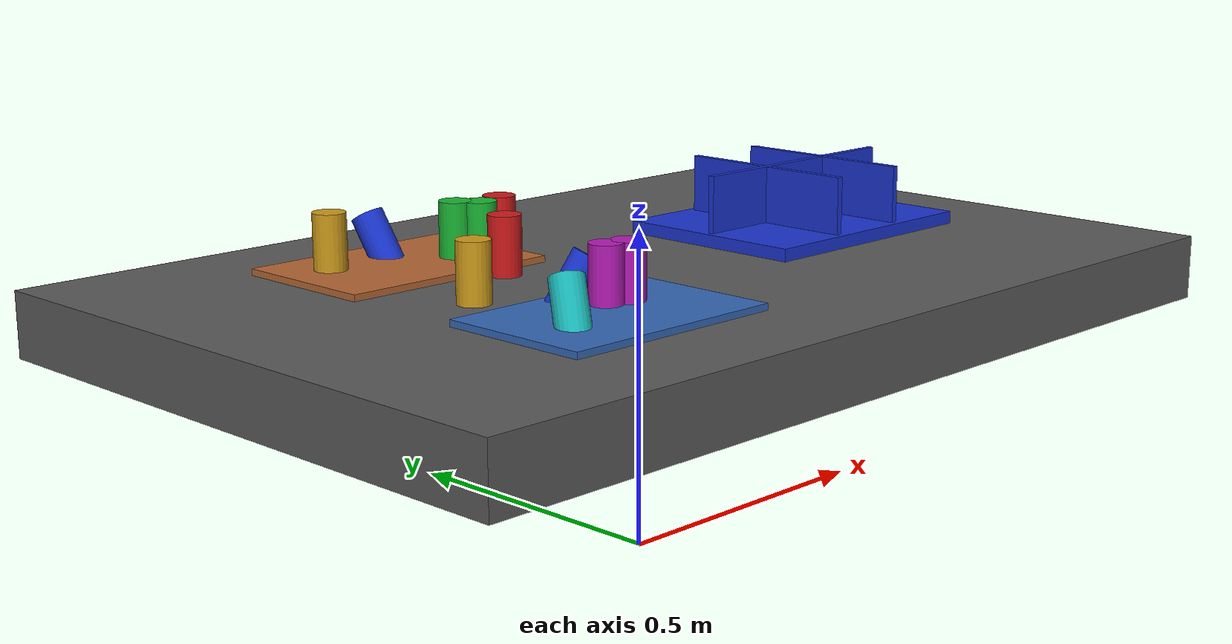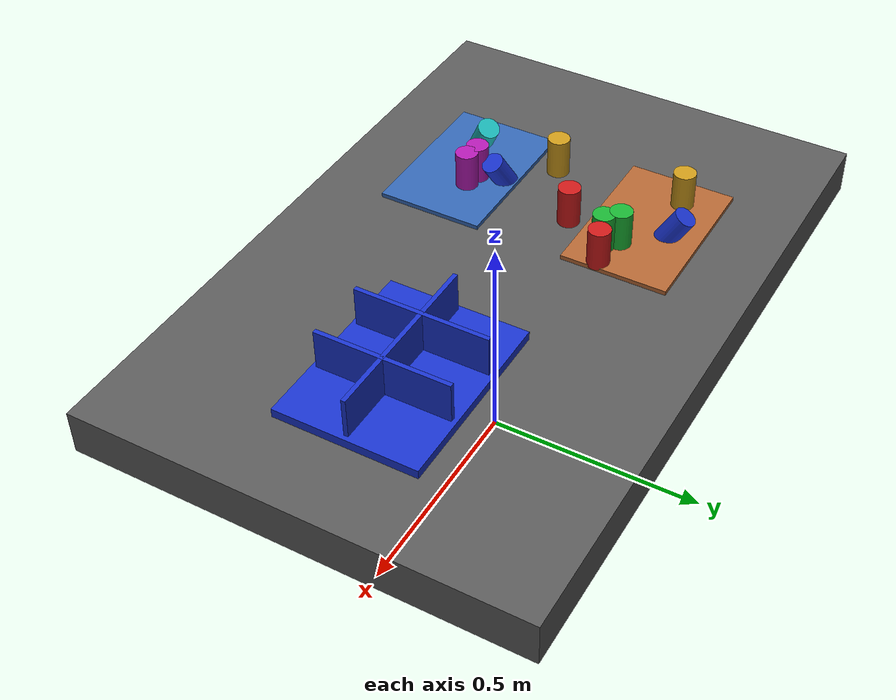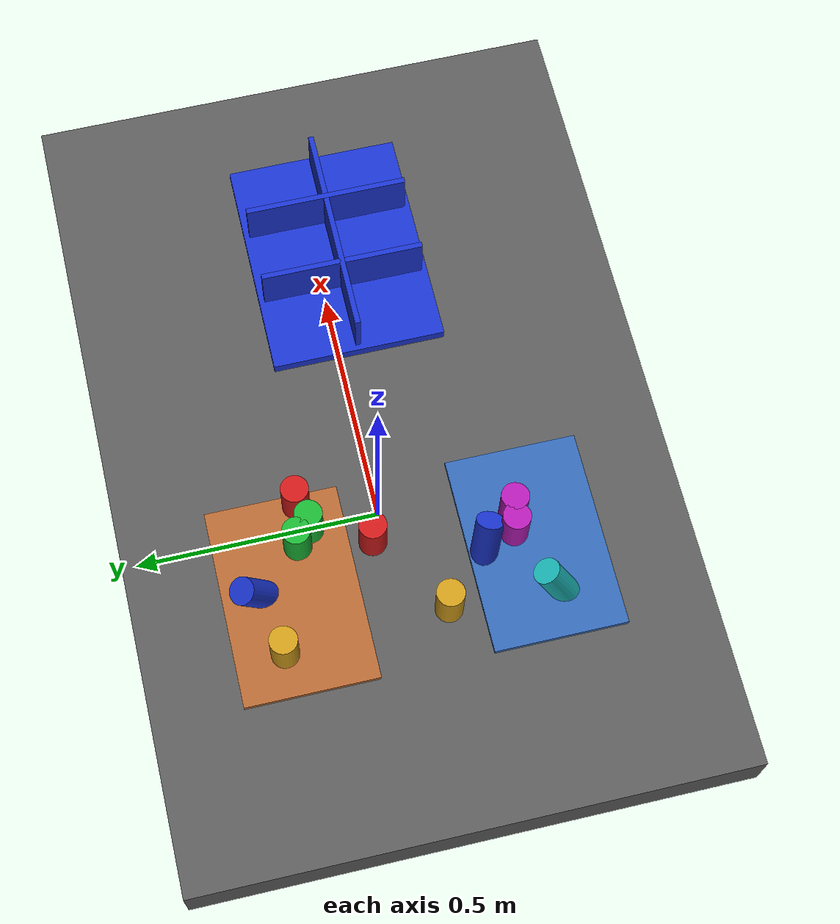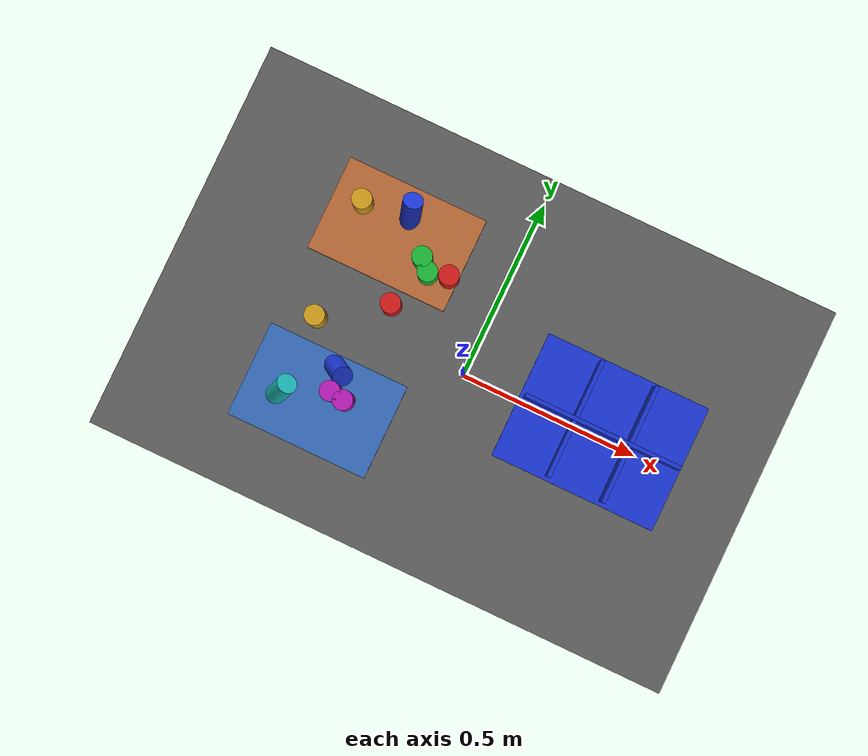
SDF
<?xml version="1.0" ?>
<sdf version="1.9">
  <!-- Standalone M1B scene.  The controller-backed Panda is spawned by the
       existing launch path; this file never alters the frozen M1A cube world. -->
  <world name="industrial_cylinder_v1">
    <physics name="bullet" type="bullet"><max_step_size>0.001</max_step_size><real_time_factor>1.0</real_time_factor></physics>
    <plugin name="gz::sim::systems::Physics" filename="gz-sim-physics-system"><engine><filename>gz-physics-bullet-featherstone-plugin</filename></engine></plugin>
    <plugin name="gz::sim::systems::UserCommands" filename="gz-sim-user-commands-system"/>
    <plugin name="gz::sim::systems::SceneBroadcaster" filename="gz-sim-scene-broadcaster-system"/>
    <plugin name="gz::sim::systems::Sensors" filename="gz-sim-sensors-system"><render_engine>ogre2</render_engine></plugin>
    <gravity>0 0 -9.81</gravity>
    <light type="directional" name="industrial_light"><pose>0 0 5 0 0 0</pose><direction>-0.3 0.2 -0.9</direction><diffuse>0.9 0.9 0.9 1</diffuse></light>
    <model name="industrial_work_table"><static>true</static><link name="link"><pose>0 0 0.4 0 0 0</pose><collision name="collision"><geometry><box><size>1.5 1.0 0.1</size></box></geometry></collision><visual name="visual"><geometry><box><size>1.5 1.0 0.1</size></box></geometry><material><diffuse>0.35 0.35 0.35 1</diffuse></material></visual></link></model>
    <model name="camera_fixture"><static>true</static><link name="camera_rgbd"><pose>-0.80 -0.80 1.40 0 0.77 0.93</pose><sensor name="front_rgbd" type="rgbd_camera"><always_on>1</always_on><update_rate>15</update_rate><topic>/xh/camera/rgbd</topic><camera><horizontal_fov>1.047</horizontal_fov><image><width>640</width><height>480</height><format>R8G8B8</format></image><clip><near>0.1</near><far>4.0</far></clip></camera></sensor></link></model>
    <model name="incoming_zone_a"><static>true</static><link name="link"><pose>-0.28 -0.22 0.455 0 0 0</pose><visual name="visual"><geometry><box><size>0.36 0.24 0.01</size></box></geometry><material><diffuse>0.2 0.4 0.7 1</diffuse></material></visual></link></model>
    <model name="incoming_zone_b"><static>true</static><link name="link"><pose>-0.28 0.22 0.455 0 0 0</pose><visual name="visual"><geometry><box><size>0.36 0.24 0.01</size></box></geometry><material><diffuse>0.7 0.4 0.2 1</diffuse></material></visual></link></model>
    <!-- M1B_RANDOM_PARTS_BEGIN -->
    <model name="cylinder_01"><pose>-0.1213 0.1769 0.5000 0.0000 0.0000 -2.9040</pose><link name="link"><inertial><mass>0.06</mass></inertial><collision name="collision"><geometry><cylinder><radius>0.025</radius><length>0.09</length></cylinder></geometry></collision><visual name="visual"><geometry><cylinder><radius>0.025</radius><length>0.09</length></cylinder></geometry><material><diffuse>0.800 0.100 0.100 1</diffuse><specular>0.15 0.15 0.15 1</specular></material></visual></link></model>
    <model name="cylinder_02"><pose>-0.1972 0.1901 0.5000 3.1416 0.0000 2.7389</pose><link name="link"><inertial><mass>0.06</mass></inertial><collision name="collision"><geometry><cylinder><radius>0.025</radius><length>0.09</length></cylinder></geometry></collision><visual name="visual"><geometry><cylinder><radius>0.025</radius><length>0.09</length></cylinder></geometry><material><diffuse>0.100 0.700 0.200 1</diffuse><specular>0.15 0.15 0.15 1</specular></material></visual></link></model>
    <model name="cylinder_03"><pose>-0.2704 0.2800 0.4800 0.4500 -0.3000 -2.4187</pose><link name="link"><inertial><mass>0.06</mass></inertial><collision name="collision"><geometry><cylinder><radius>0.025</radius><length>0.09</length></cylinder></geometry></collision><visual name="visual"><geometry><cylinder><radius>0.025</radius><length>0.09</length></cylinder></geometry><material><diffuse>0.100 0.200 0.800 1</diffuse><specular>0.15 0.15 0.15 1</specular></material></visual></link></model>
    <model name="cylinder_04"><pose>-0.3834 0.2516 0.5000 0.0000 0.0000 -0.1729</pose><link name="link"><inertial><mass>0.06</mass></inertial><collision name="collision"><geometry><cylinder><radius>0.025</radius><length>0.09</length></cylinder></geometry></collision><visual name="visual"><geometry><cylinder><radius>0.025</radius><length>0.09</length></cylinder></geometry><material><diffuse>0.800 0.600 0.100 1</diffuse><specular>0.15 0.15 0.15 1</specular></material></visual></link></model>
    <model name="cylinder_05"><pose>-0.2566 -0.1871 0.5000 3.1416 0.0000 1.0288</pose><link name="link"><inertial><mass>0.06</mass></inertial><collision name="collision"><geometry><cylinder><radius>0.025</radius><length>0.09</length></cylinder></geometry></collision><visual name="visual"><geometry><cylinder><radius>0.025</radius><length>0.09</length></cylinder></geometry><material><diffuse>0.700 0.100 0.700 1</diffuse><specular>0.15 0.15 0.15 1</specular></material></visual></link></model>
    <model name="cylinder_06"><pose>-0.3684 -0.2342 0.4800 0.4500 -0.3000 -3.1291</pose><link name="link"><inertial><mass>0.06</mass></inertial><collision name="collision"><geometry><cylinder><radius>0.025</radius><length>0.09</length></cylinder></geometry></collision><visual name="visual"><geometry><cylinder><radius>0.025</radius><length>0.09</length></cylinder></geometry><material><diffuse>0.100 0.700 0.700 1</diffuse><specular>0.15 0.15 0.15 1</specular></material></visual></link></model>
    <model name="cylinder_07"><pose>-0.2169 0.0593 0.5000 0.0000 0.0000 -0.9404</pose><link name="link"><inertial><mass>0.06</mass></inertial><collision name="collision"><geometry><cylinder><radius>0.025</radius><length>0.09</length></cylinder></geometry></collision><visual name="visual"><geometry><cylinder><radius>0.025</radius><length>0.09</length></cylinder></geometry><material><diffuse>0.800 0.100 0.100 1</diffuse><specular>0.15 0.15 0.15 1</specular></material></visual></link></model>
    <model name="cylinder_08"><pose>-0.1710 0.1633 0.5000 3.1416 0.0000 3.0506</pose><link name="link"><inertial><mass>0.06</mass></inertial><collision name="collision"><geometry><cylinder><radius>0.025</radius><length>0.09</length></cylinder></geometry></collision><visual name="visual"><geometry><cylinder><radius>0.025</radius><length>0.09</length></cylinder></geometry><material><diffuse>0.100 0.700 0.200 1</diffuse><specular>0.15 0.15 0.15 1</specular></material></visual></link></model>
    <model name="cylinder_09"><pose>-0.2658 -0.1337 0.4800 0.4500 -0.3000 1.6638</pose><link name="link"><inertial><mass>0.06</mass></inertial><collision name="collision"><geometry><cylinder><radius>0.025</radius><length>0.09</length></cylinder></geometry></collision><visual name="visual"><geometry><cylinder><radius>0.025</radius><length>0.09</length></cylinder></geometry><material><diffuse>0.100 0.200 0.800 1</diffuse><specular>0.15 0.15 0.15 1</specular></material></visual></link></model>
    <model name="cylinder_10"><pose>-0.3657 -0.0424 0.5000 0.0000 0.0000 1.8226</pose><link name="link"><inertial><mass>0.06</mass></inertial><collision name="collision"><geometry><cylinder><radius>0.025</radius><length>0.09</length></cylinder></geometry></collision><visual name="visual"><geometry><cylinder><radius>0.025</radius><length>0.09</length></cylinder></geometry><material><diffuse>0.800 0.600 0.100 1</diffuse><specular>0.15 0.15 0.15 1</specular></material></visual></link></model>
    <model name="cylinder_11"><pose>-0.2204 -0.1935 0.5000 3.1416 0.0000 2.9598</pose><link name="link"><inertial><mass>0.06</mass></inertial><collision name="collision"><geometry><cylinder><radius>0.025</radius><length>0.09</length></cylinder></geometry></collision><visual name="visual"><geometry><cylinder><radius>0.025</radius><length>0.09</length></cylinder></geometry><material><diffuse>0.700 0.100 0.700 1</diffuse><specular>0.15 0.15 0.15 1</specular></material></visual></link></model>
    <!-- M1B_RANDOM_PARTS_END -->
    <model name="blue_partition_bin"><static>true</static><pose>0.36 0 0.45 0 0 0</pose><link name="link"><collision name="floor"><pose>0 0 0.01 0 0 0</pose><geometry><box><size>0.42 0.32 0.02</size></box></geometry></collision><visual name="floor_visual"><pose>0 0 0.01 0 0 0</pose><geometry><box><size>0.42 0.32 0.02</size></box></geometry><material><diffuse>0.1 0.2 0.8 1</diffuse></material></visual><visual name="row_divider"><pose>0 0 0.06 0 0 0</pose><geometry><box><size>0.40 0.01 0.10</size></box></geometry><material><diffuse>0.1 0.2 0.8 1</diffuse></material></visual><visual name="col_divider_a"><pose>-0.07 0 0.06 0 0 0</pose><geometry><box><size>0.01 0.30 0.10</size></box></geometry><material><diffuse>0.1 0.2 0.8 1</diffuse></material></visual><visual name="col_divider_b"><pose>0.07 0 0.06 0 0 0</pose><geometry><box><size>0.01 0.30 0.10</size></box></geometry><material><diffuse>0.1 0.2 0.8 1</diffuse></material></visual></link></model>
    <!-- Reserved only: second table, bin transport corridor, stackable-bin
         collision volume, and second arm mounting namespace. -->
  </world>
</sdf>
